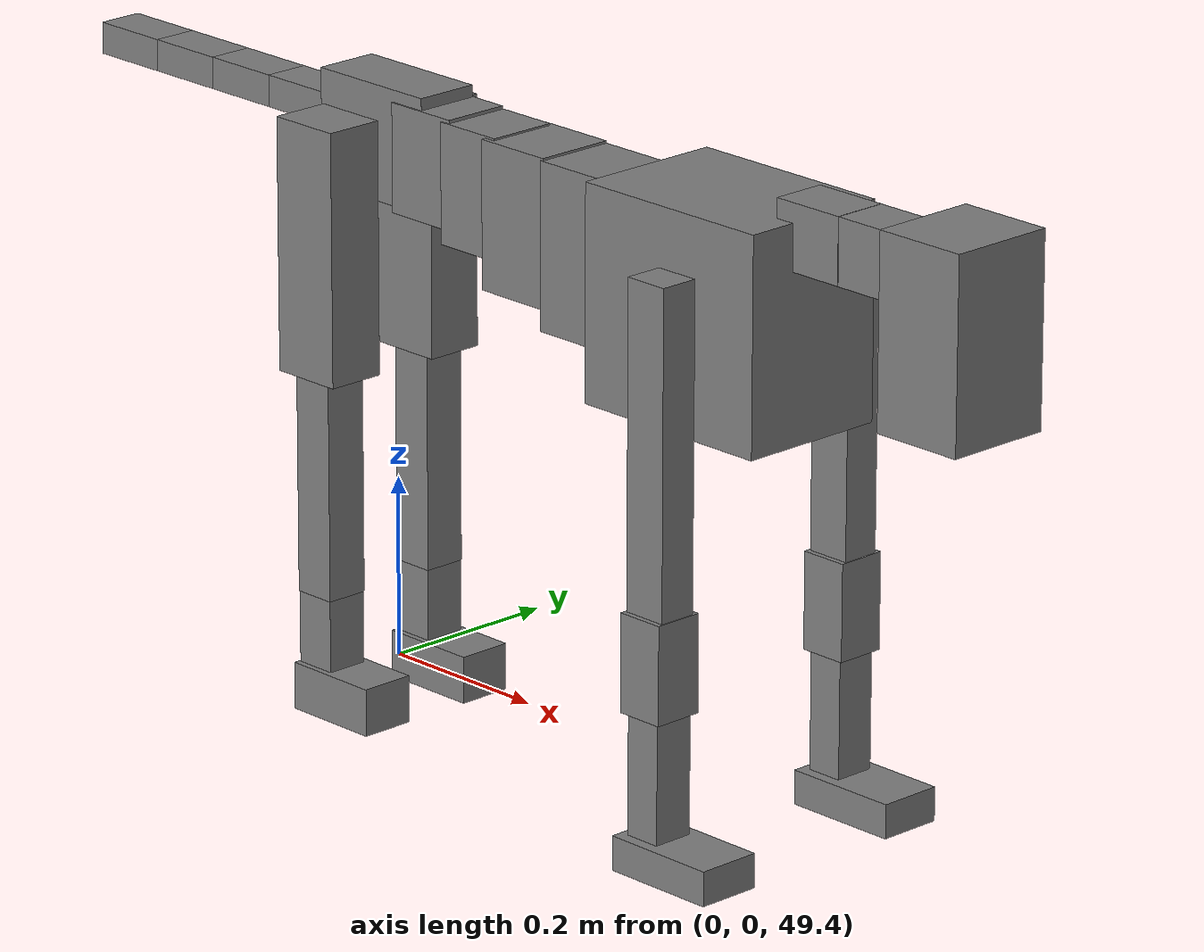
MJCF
<mujoco model="dog">

    <default>
        <joint armature="0.02" stiffness="1" damping="0.2" limited="true"/>
        <geom condim="3" friction="1 0.05 0.05" margin="0.01"/>
        <motor ctrllimited="true" ctrlrange="-1.0 1.0" forcelimited="true" gear="50"/>
    </default>

    <compiler inertiafromgeom="true" angle="radian"/>

    <option timestep="0.016" iterations="50" tolerance="1e-10" solver="Newton" jacobian="dense" cone="pyramidal"/>

    <size nconmax="20000" njmax="60000" nstack="5000000"/>
    <visual>
        <map force="0.1" zfar="30"/>
        <rgba haze="0.15 0.25 0.35 1"/>
        <quality shadowsize="2048"/>
        <global offwidth="800" offheight="800"/>
    </visual>

    <asset>
        <texture type="skybox" builtin="gradient" rgb1="0.3 0.5 0.7" rgb2="0 0 0" width="512" height="512"/>
        <texture name="texplane" type="2d" builtin="checker" rgb1=".2 .3 .4" rgb2=".1 0.15 0.2" width="512" height="512"
                 mark="cross" markrgb=".8 .8 .8"/>
        <texture name="texgeom" type="cube" builtin="flat" mark="cross" width="127" height="1278" rgb1="0.8 0.6 0.4"
                 rgb2="0.8 0.6 0.4" markrgb="1 1 1" random="0.01"/>

        <material name="matplane" reflectance="0.3" texture="texplane" texrepeat="1 1" texuniform="true"/>
        <material name="matgeom" texture="texgeom" texuniform="true" rgba="0.8 0.6 .4 1"/>
    </asset>

    <worldbody>
        <geom name="floor" pos="0 0 0" size="0 0 .25" type="plane" material="matplane" condim="3"/>

        <light directional="false" diffuse=".2 .2 .2" specular="0 0 0" pos="0 0 5" dir="0 0 -1" castshadow="false"/>
        <light mode="targetbodycom" target="torso" directional="false" diffuse=".8 .8 .8" specular="0.3 0.3 0.3"
               pos="0 0 4.0" dir="0 0 -1"/>

        <body name="root" pos="0 0 50">
            <freejoint name="root_1"/>
            <geom type="box" pos="0 0 -0.02" size="0.0774  0.0358  0.063" density="2030"/>

            <body name="spine1" pos="0.054 0 0">
                <joint name="spine1_y" axis="0 1 0" range="0 0.7" limited="true"/>
                <geom type="box" pos="0.02375 0 -0.03" size="0.04375  0.0375  0.05985" density="2030"/>

                <body name="spine2" pos="0.0612 0 0">
                    <joint name="spine2_y" axis="0 1 0" range="-0.15 0.15" limited="true"/>
                    <geom type="box" pos="0.03555  0  -0.04" size="0.04055  0.039  0.06615" density="2030"/>

                    <body name="spine3" pos="0.0730 0 0">
                        <joint name="spine3_y" axis="0 1 0" range="-0.15 0.15" limited="true"/>
                        <geom type="box" pos="0.03555  0  -0.057" size="0.04555  0.0445  0.081" density="2030"/>

                        <body name="spine4" pos="0.0780 0 0">
                            <joint name="spine4_y" axis="0 1 0" range="-0.15 0.15" limited="true"/>
                            <geom type="box" pos="0.05265  0  -0.07" size="0.05265  0.045  0.09135" density="2030"/>

                            <body name="torso" pos="0.1082 0 0">
                                <joint name="torso_y" axis="0 1 0" range="-0.15 0.15" limited="true"/>
                                <geom type="box" pos="0.11925  0  -0.085" size="0.11925  0.085  0.11745"
                                      density="2030"/>

                                <body name="neck1" pos="0.2160  0   0.0180">
                                    <joint name="neck1_y" axis="0 1 0" range="-1.2  -1" limited="true"/>
                                    <geom type="box" pos="0.0423  0  0" size="0.0423  0.03  0.036" density="2325"/>

                                    <body name="neck2" pos="0.0853  0  0">
                                        <joint name="neck2_y" axis="0 1 0" range="0.1  0" limited="true"/>
                                        <geom type="box" pos="0.0423  0  0" size="0.0423  0.03  0.036" density="2325"/>

                                        <body name="head" pos="0.0853  0  0">
                                            <joint name="head_y" axis="0 1 0" range="-0.3  -0.2" limited="true"/>
                                            <geom type="box" pos="0.0531  0  -0.055" size="0.0531  0.06  0.1044"
                                                  density="4030"/>

                                        </body>
                                    </body>
                                </body>

                                <body name="front_shoulder" pos="0.156  0   -0.0480">
                                    <joint name="front_shoulder_y" axis="0 1 0" range="-1 1.5" limited="true"/>
                                    <geom type="box" pos="0 0.13 -0.1630" size="0.0252  0.0215  0.1896" density="1158"/>
                                    <geom type="box" pos="0 -0.13 -0.1630" size="0.0252  0.0215  0.1896"
                                          density="1158"/>

                                    <body name="front_elbow" pos="0  0  -0.3259">
                                        <joint name="front_elbow_y" axis="0 1 0" range="-2 0" limited="true"/>
                                        <geom type="box" pos="0 0.13 -0.0536" size="0.0271  0.0277  0.0536"
                                              density="1081"/>
                                        <geom type="box" pos="0 -0.13 -0.0536" size="0.0271  0.0277  0.0536"
                                              density="1081"/>

                                        <body name="front_wrist" pos="0  0  -0.1072">
                                            <joint name="front_wrist_y" axis="0 1 0" range="-0.2 0" limited="true"/>
                                            <geom type="box" pos="0 0.13 -0.0735" size="0.0208  0.0231  0.0867"
                                                  density="1664"/>
                                            <geom type="box" pos="0 -0.13 -0.0735" size="0.0208  0.0231  0.0867"
                                                  density="1664"/>

                                            <body name="front_finger_end" pos="0  0  -0.1470">
                                                <joint name="front_finger_y" axis="0 1 0" range="-0.4 1"
                                                       limited="true"/>
                                                <geom type="box" pos="0.0358  0.13  -0.0039"
                                                      size="0.0657  0.0358  0.0189" density="1515"/>
                                                <geom type="box" pos="0.0358  -0.13  -0.0039"
                                                      size="0.0657  0.0358  0.0189" density="1515"/>

                                            </body>

                                        </body>
                                    </body>
                                </body>

                            </body>
                        </body>
                    </body>
                </body>
            </body>

            <body name="back_hip" pos="-0.03 0 -0.018">
                <joint name="back_hip_y" axis="0 1 0" range="-1.5 0.3" limited="true"/>
                <geom type="box" pos="0 0.07 -0.1166" size="0.0418  0.0328  0.1394" density="1154"/>
                <geom type="box" pos="0 -0.07 -0.1166" size="0.0418  0.0328  0.1394" density="1154"/>

                <body name="back_knee" pos="0  0  -0.2332">
                    <joint name="back_knee_y" axis="0 1 0" range="0 2.8" limited="true"/>
                    <geom type="box" pos="0 0.07 -0.1258" size="0.0246  0.0243  0.1413" density="1227"/>
                    <geom type="box" pos="0 -0.07 -0.1258" size="0.0246  0.0243  0.1413" density="1227"/>

                    <body name="back_ankle" pos="0  0  -0.2515">
                        <joint name="back_ankle_y" axis="0 1 0" range="-2.2 0" limited="true"/>
                        <geom type="box" pos="0 0.07 -0.0553" size="0.0238  0.0238  0.0666" density="1284"/>
                        <geom type="box" pos="0 -0.07 -0.0553" size="0.0238  0.0238  0.0666" density="1284"/>

                        <body name="back_toe_end" pos="0  0  -0.1106">
                            <joint name="back_toe_y" axis="0 1 0" range="-0.4 1" limited="true"/>
                            <geom type="box" pos="0.0307  0.07  -0.0113" size="0.0564  0.0307  0.0263" density="1515"/>
                            <geom type="box" pos="0.0307  -0.07  -0.0113" size="0.0564  0.0307  0.0263" density="1515"/>

                        </body>
                    </body>
                </body>
            </body>

            <body name="tail1" pos="-0.074 0 -0.006">
                <joint name="tail1_y" axis="0 1 0" range="-0.2 0.2" limited="true"/>
                <geom type="box" pos="-0.0536  0  0" size="0.045  0.025  0.0175" density="1587"/>

                <body name="tail2" pos="-0.09 0 0">
                    <joint name="tail2_y" axis="0 1 0" range="-0.2 0.2" limited="true"/>
                    <geom type="box" pos="-0.0536  0  0" size="0.045  0.025  0.0175" density="1587"/>

                    <body name="tail3" pos="-0.09 0 0">
                        <joint name="tail3_y" axis="0 1 0" range="-0.2 0.2" limited="true"/>
                        <geom type="box" pos="-0.0536  0  0" size="0.045  0.025  0.0175" density="1587"/>

                        <body name="tail4" pos="-0.09 0 0">
                            <joint name="tail4_y" axis="0 1 0" range="-0.2 0.2" limited="true"/>
                            <geom type="box" pos="-0.0536  0  0" size="0.045  0.025  0.0175" density="1587"/>

                        </body>
                    </body>
                </body>
            </body>
        </body>
    </worldbody>

    <actuator>
        <motor joint="spine1_y" forcerange="-150 150     "/>
        <motor joint="spine2_y" forcerange="-150 150     "/>
        <motor joint="spine3_y" forcerange="-150 150     "/>
        <motor joint="spine4_y" forcerange="-150 150     "/>
        <motor joint="torso_y" forcerange="-150 150     "/>
        <motor joint="neck1_y" forcerange="-100 100       "/>
        <motor joint="neck2_y" forcerange="-100 100       "/>
        <motor joint="head_y" forcerange="-150 150       "/>
        <motor joint="front_shoulder_y" forcerange="-117.97 125.61"/>
        <motor joint="front_elbow_y" forcerange="-170.68 130.52"/>
        <motor joint="front_wrist_y" forcerange="-114.99 69.56"/>
        <motor joint="front_finger_y" forcerange="-88.00 63.06"/>
        <motor joint="back_hip_y" forcerange="-376.77 260.66"/>
        <motor joint="back_knee_y" forcerange="-283.25 269.57"/>
        <motor joint="back_angle_y" forcerange="-97.92 182.72"/>
        <motor joint="back_toe_y" forcerange="-131.20 34.78"/>
        <motor joint="tail1_y" forcerange="-50 50     "/>
        <motor joint="tail2_y" forcerange="-50 50     "/>
        <motor joint="tail3_y" forcerange="-50 50     "/>
        <motor joint="tail4_y" forcerange="-50 50     "/>
    </actuator>
</mujoco>
